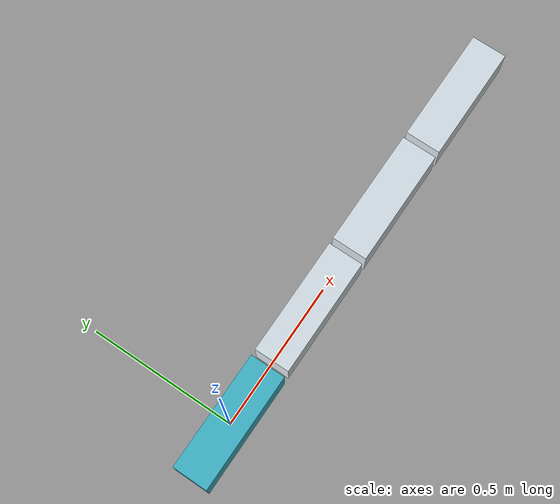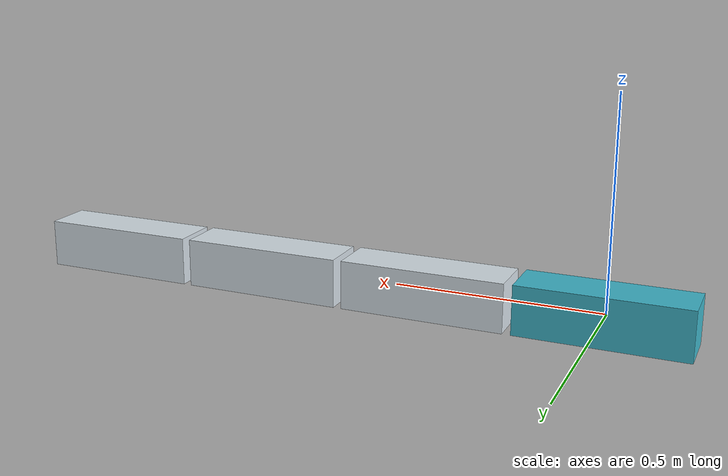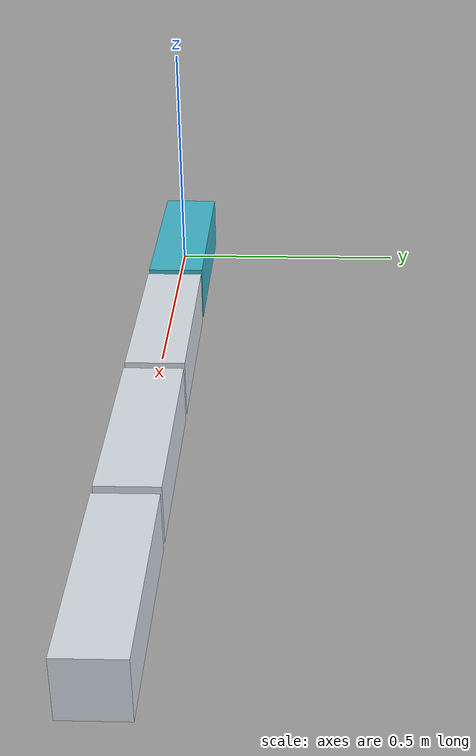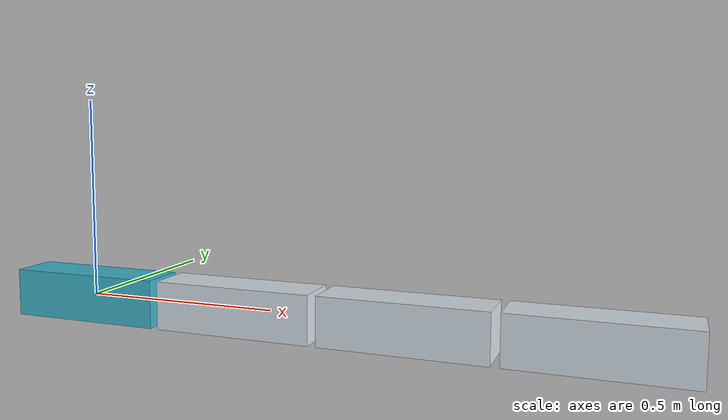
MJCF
<mujoco model="criatura">
  <compiler angle="degree" autolimits="true"/>
  <option timestep="0.002083" gravity="0 0 0" integrator="implicitfast"/>
  <default>
    <geom type="box" density="300.0" rgba="0.85 0.89 0.92 1"/>
    <joint type="hinge"/>
    <motor ctrlrange="-1 1"/>
  </default>
  <worldbody>
    <body name="p0_n0" pos="0.00000 0.00000 0.00000" quat="1.000000 0.000000 0.000000 0.000000">
      <freejoint name="raiz"/>
      <geom name="g_p0_n0" size="0.20000 0.06000 0.06000" rgba="0.25 0.72 0.8 1"/>
      <body name="p1_n1" pos="0.42000 0.00000 0.00000" quat="1.000000 0.000000 0.000000 0.000000">
        <joint name="p1_n1_j0" axis="0.0000 0.0000 1.0000" pos="-0.22000 0 0" range="-60.00 60.00" damping="0.7200"/>
        <geom name="g_p1_n1" size="0.20000 0.06000 0.06000"/>
        <body name="p2_n1" pos="0.42000 0.00000 0.00000" quat="1.000000 0.000000 0.000000 0.000000">
          <joint name="p2_n1_j0" axis="0.0000 0.0000 1.0000" pos="-0.22000 0 0" range="-60.00 60.00" damping="0.7200"/>
          <geom name="g_p2_n1" size="0.20000 0.06000 0.06000"/>
          <body name="p3_n1" pos="0.42000 0.00000 0.00000" quat="1.000000 0.000000 0.000000 0.000000">
            <joint name="p3_n1_j0" axis="0.0000 0.0000 1.0000" pos="-0.22000 0 0" range="-60.00 60.00" damping="0.7200"/>
            <geom name="g_p3_n1" size="0.20000 0.06000 0.06000"/>
          </body>
        </body>
      </body>
    </body>
  </worldbody>
  <actuator>
    <motor name="m_p1_n1_j0" joint="p1_n1_j0" gear="14.4000"/>
    <motor name="m_p2_n1_j0" joint="p2_n1_j0" gear="14.4000"/>
    <motor name="m_p3_n1_j0" joint="p3_n1_j0" gear="14.4000"/>
  </actuator>
</mujoco>
